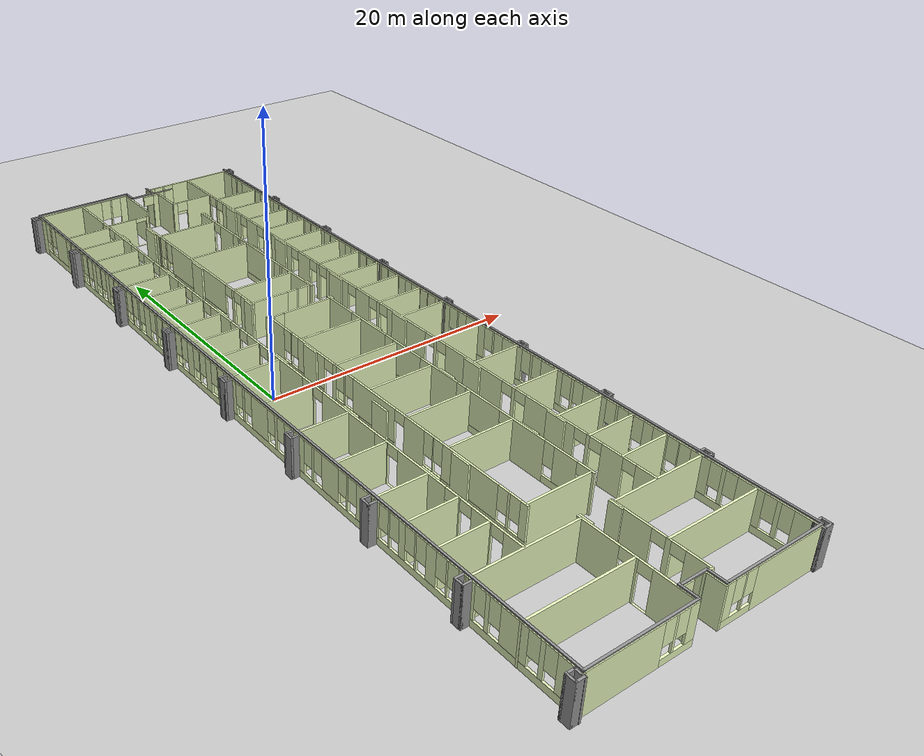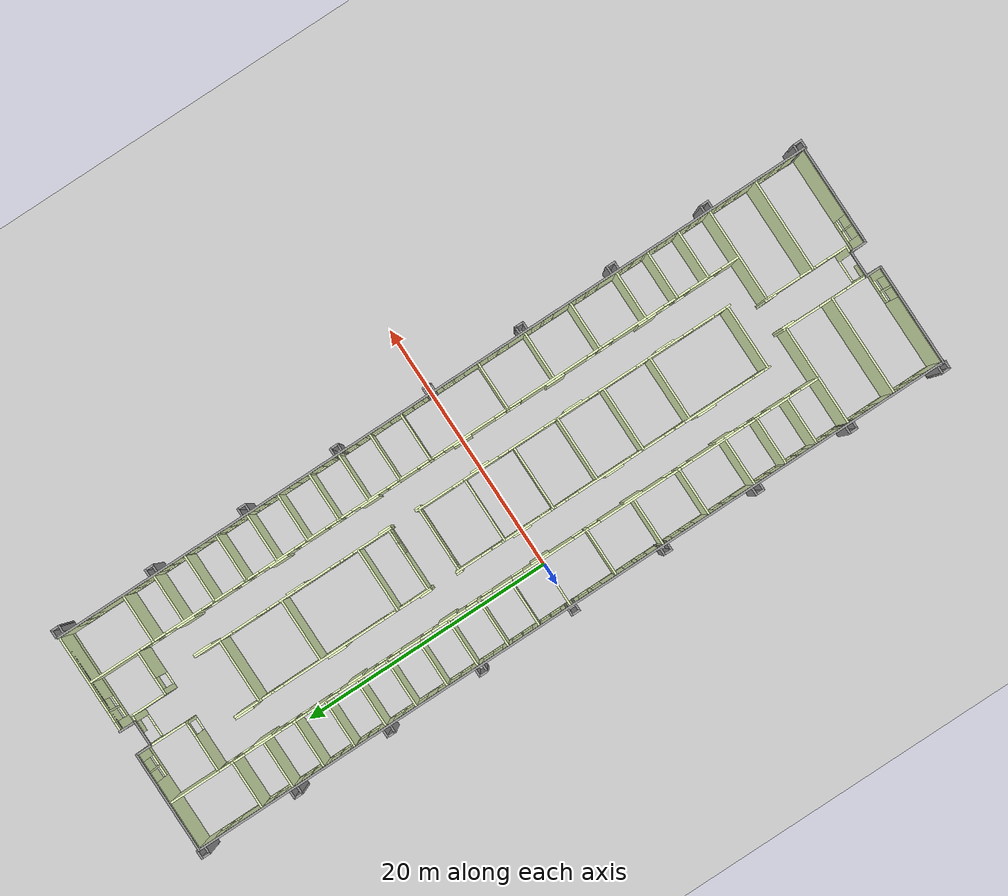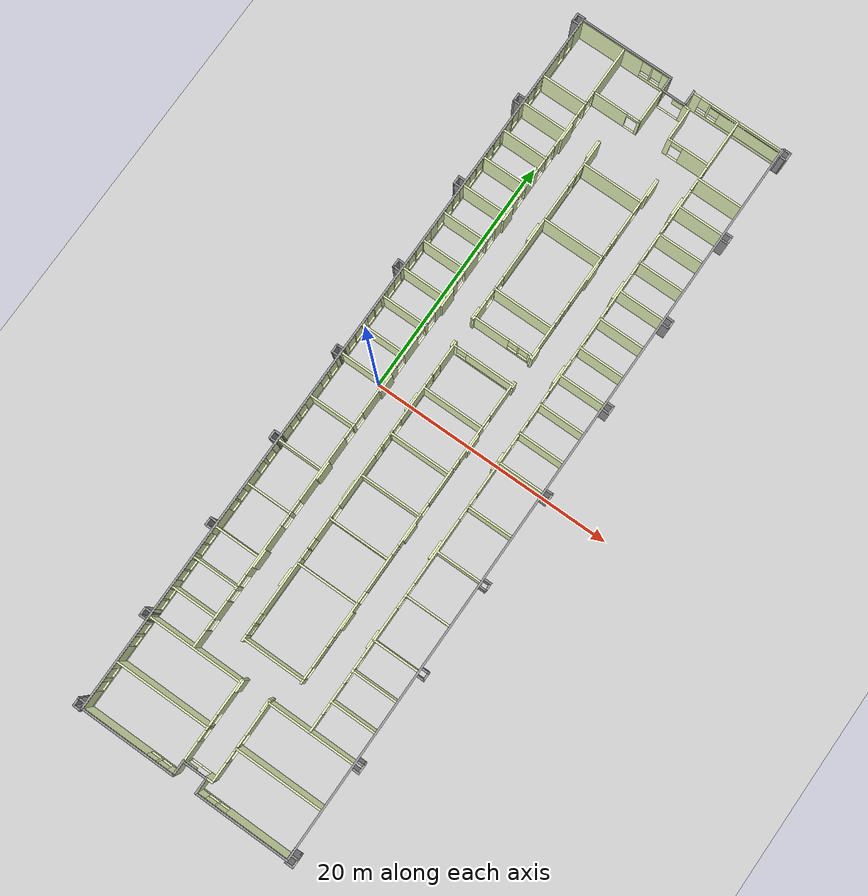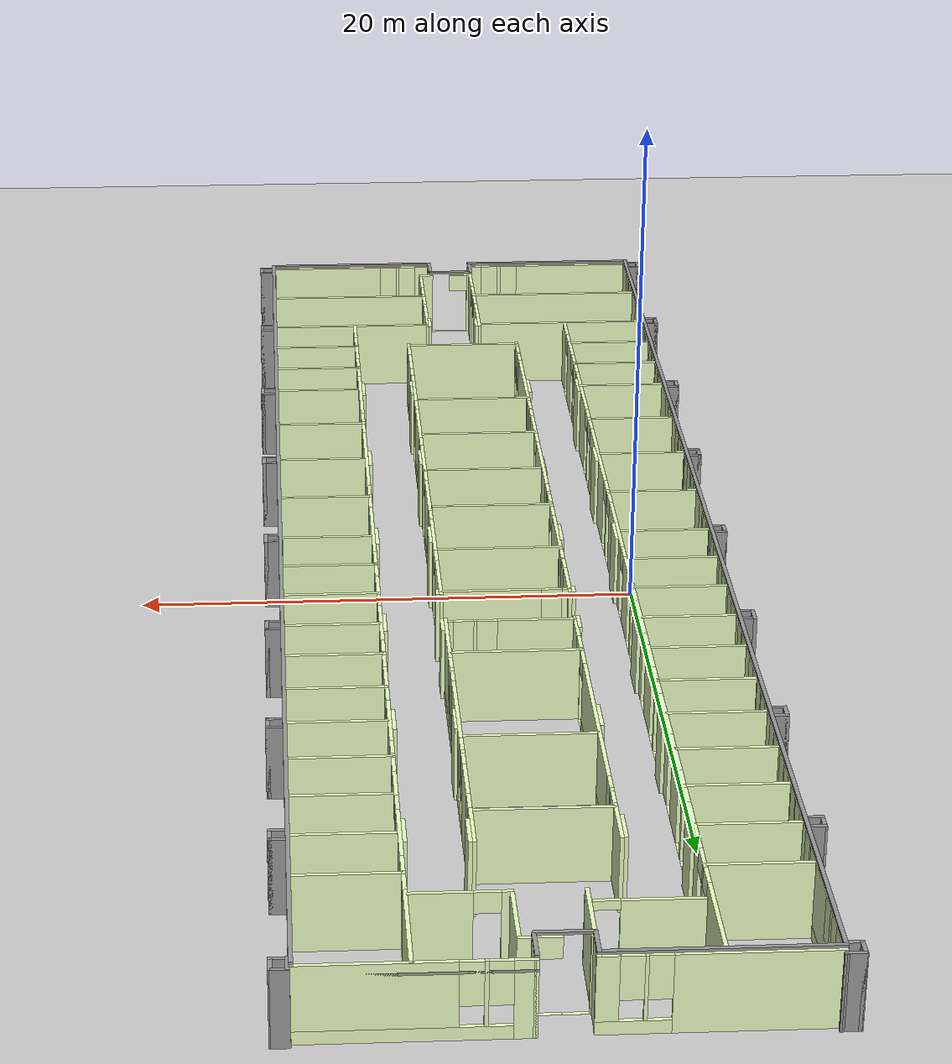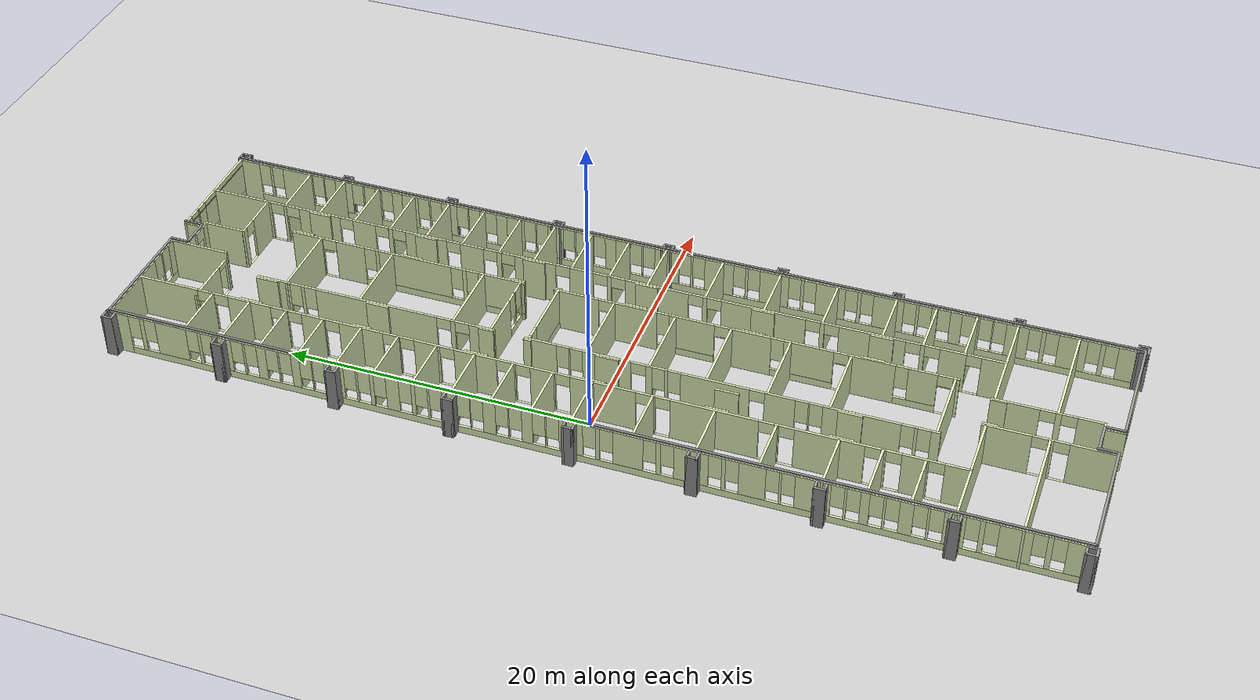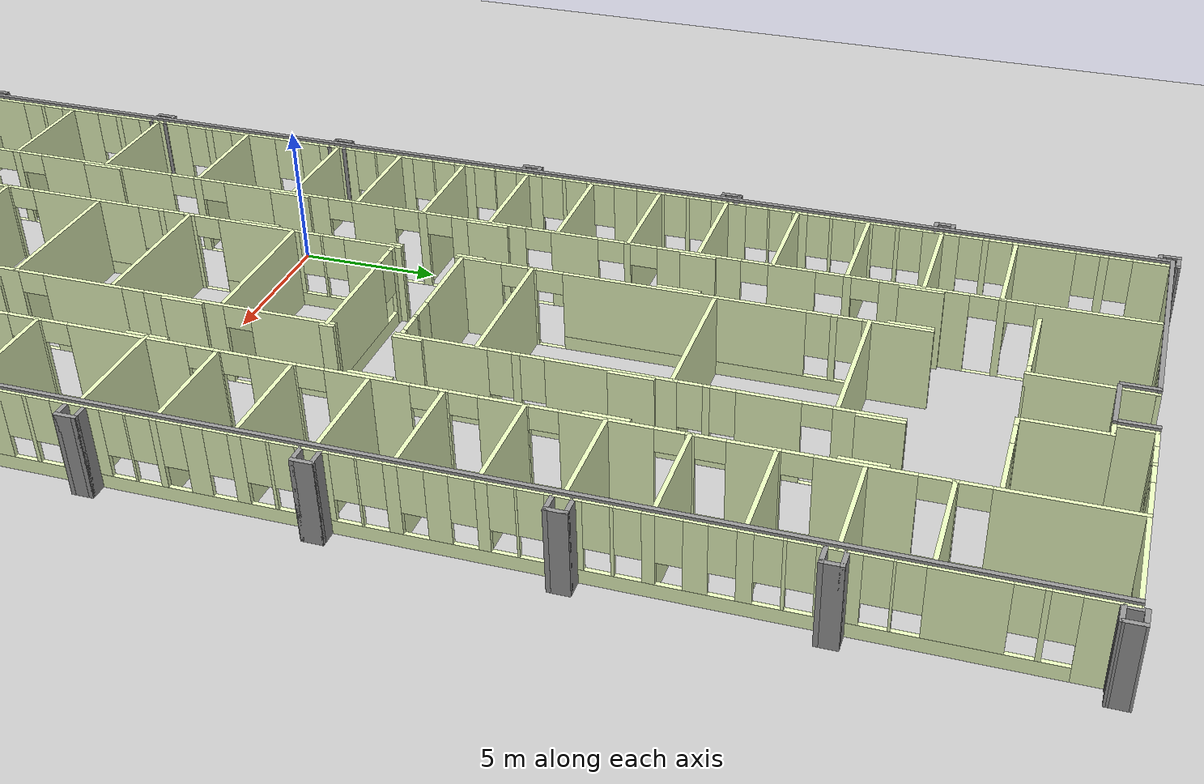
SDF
<sdf version='1.6'>
  <world name='default'>

    <gui fullscreen='0'>
      <camera name='user_camera'>
        <pose frame=''>0.036397 -1.29075 62.3037 3.14159 1.54159 3.14159</pose>
        <view_controller>orbit</view_controller>
        <projection_type>perspective</projection_type>
      </camera>
    </gui>

    <gravity>0 0 -9.81</gravity>
    <magnetic_field>6e-06 2.3e-05 -4.2e-05</magnetic_field>
    <atmosphere type='adiabatic'/>
    <physics name='default_physics' default='0' type='ode'>
      <max_step_size>0.001</max_step_size>
      <real_time_factor>1</real_time_factor>
      <real_time_update_rate>1000</real_time_update_rate>
    </physics>

    <scene>
      <ambient>0.4 0.4 0.4 1</ambient>
      <background>0.7 0.7 0.7 1</background>
      <shadows>1</shadows>
    </scene>

    <spherical_coordinates>
      <surface_model>EARTH_WGS84</surface_model>
      <latitude_deg>0</latitude_deg>
      <longitude_deg>0</longitude_deg>
      <elevation>0</elevation>
      <heading_deg>0</heading_deg>
    </spherical_coordinates>

    <light name='sun' type='directional'>
      <cast_shadows>1</cast_shadows>
      <pose frame=''>0 0 10 0 -0 0</pose>
      <diffuse>0.8 0.8 0.8 1</diffuse>
      <specular>0.1 0.1 0.1 1</specular>
      <attenuation>
        <range>1000</range>
        <constant>0.9</constant>
        <linear>0.01</linear>
        <quadratic>0.001</quadratic>
      </attenuation>
      <direction>-0.5 0.5 -1</direction>
    </light>

    <model name='ground_plane'>
      <static>1</static>
      <link name='link'>
        <collision name='collision'>
          <geometry>
            <plane>
              <normal>0 0 1</normal>
              <size>100 100</size>
            </plane>
          </geometry>
          <surface>
            <friction>
              <ode>
                <mu>100</mu>
                <mu2>50</mu2>
              </ode>
              <torsional>
                <ode/>
              </torsional>
            </friction>
            <contact>
              <ode/>
            </contact>
            <bounce/>
          </surface>
          <max_contacts>10</max_contacts>
        </collision>
        <visual name='visual'>
          <cast_shadows>0</cast_shadows>
          <geometry>
            <plane>
              <normal>0 0 1</normal>
              <size>100 100</size>
            </plane>
          </geometry>
          <material>
            <script>
              <uri>file://media/materials/scripts/gazebo.material</uri>
              <name>Gazebo/Grey</name>
            </script>
          </material>
        </visual>
        <self_collide>0</self_collide>
        <kinematic>0</kinematic>
        <gravity>1</gravity>
      </link>
    </model>

    <include>
        <uri>model://worlds/models/predio73</uri>
    </include>

  </world>
</sdf>
